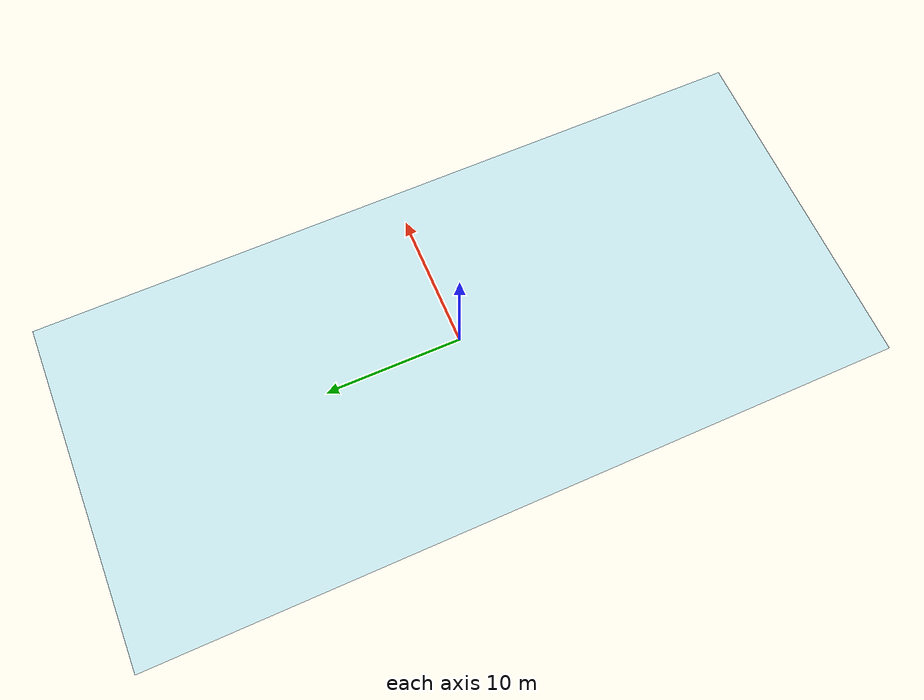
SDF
<?xml version="1.0" ?>
<sdf version="1.9">
    <model name="ceiling">
        <static>true</static>
        <link name="ceiling_link">
            <visual name="ceiling_visual">
                <transparency>0.8</transparency>
                <geometry>
                    <mesh>
                        <uri>ceiling.dae</uri>
                    </mesh>
                </geometry>
            </visual>
            <collision name="ceiling_collision">
                <geometry>
                    <mesh>
                        <uri>ceiling.dae</uri>
                    </mesh>
                </geometry>
            </collision>
        </link>
    </model>
</sdf>
